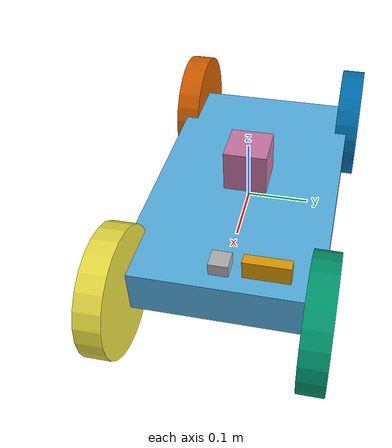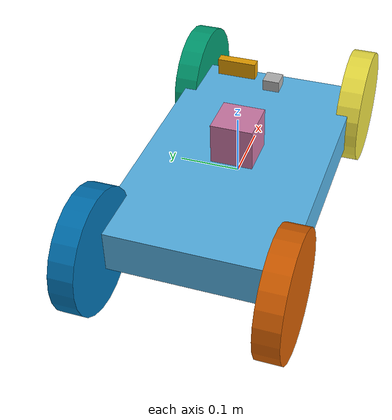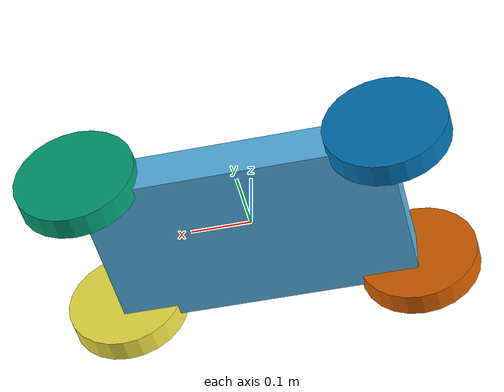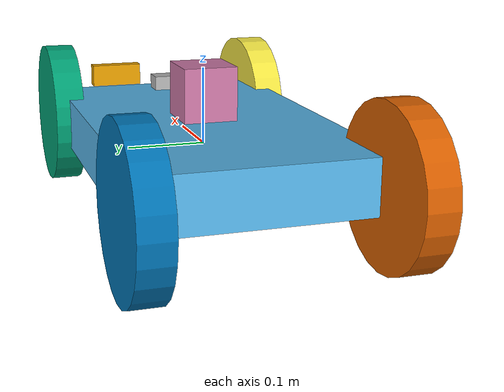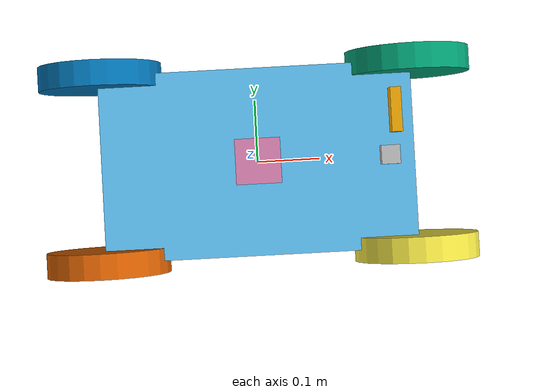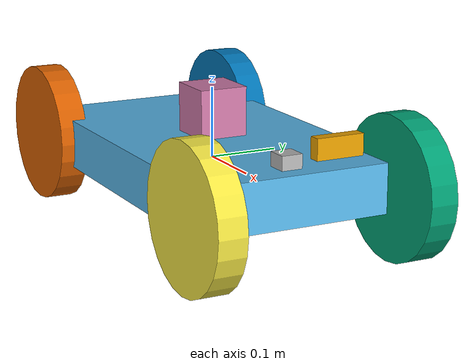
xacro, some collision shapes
<robot name="simple4wheeler" xmlns:xacro = "http://www.ros.org/wiki/xacro">
    <xacro:property name="pii" value="3.142" />

    <link name="map">
    </link>

    <link name ="link_chasis">
        <!--Pose x, y, z, roll, pitch, yaw-->
        <pose> 0 0 0.1 0 0 0 </pose>
        <inertial>
            <mass value="50"/>
            <origin rpy="0 0 0" xyz=" 0 0 0.1" />
            <inertia ixx="0.03954"
                     ixy="0"
                     ixz="0"
                     iyy="0.10620"
                     iyz="0"
                     izz="0.10620" />
        </inertial>

        <collision name="collision_chasis">
            <geometry>
                <box size="0.5 0.3 0.07"/>
            </geometry>
        </collision>
        <visual>
            <geometry>
                <box size="0.5 0.3 0.07"/>
            </geometry>
        </visual>
    </link>

    <joint name="joint_map" type="fixed">
        <parent link="map"/>
        <child link="link_chasis"/>
    </joint>
<link name = "link_right_back_wheel">
        <inertial>
            <mass value = "5"/>
            <origin rpy = "0 0 0" xyz = "0 0 0.1"/>
            <inertia ixx = "0.03954"
                 ixy = "0"
                 ixz = "0"
                 iyy = "0.10620"
                 iyz = "0"
                 izz = "0.10620"/>
        </inertial>
        <collision name = "collision_right_back_wheel">
            <geometry>
                <cylinder length = "0.04" radius = "0.1"/>
            </geometry>
        </collision>

        <visual name = "visual_right_back_wheel">
            <geometry>
                <cylinder length = "0.04" radius = "0.1"/>
            </geometry>
        </visual>
</link>
    <joint name = "joint_right_back_wheel" type = "continuous">
        <origin rpy = "1.57 1.57 0" xyz = "0.25 0.15 0"/>
        <parent link = "link_chasis"/>
        <child link = "link_right_back_wheel"/>
        <axis rpy = "0 0 0" xyz = "0 0 1"/>
        <limit effort = "10" velocity = "10"/>
        <joint_properties damping = "1.0" friction = "1.0"/>
    </joint>
    <link name = "link_left_back_wheel">
        <inertial>
            <mass value = "5"/>
            <origin rpy = "0 0 0" xyz = "0 0 0.1"/>
            <inertia ixx = "0.03954"
                 ixy = "0"
                 ixz = "0"
                 iyy = "0.10620"
                 iyz = "0"
                 izz = "0.10620"/>
        </inertial>
        <collision name = "collision_left_back_wheel">
            <geometry>
                <cylinder length = "0.04" radius = "0.1"/>
            </geometry>
        </collision>

        <visual name = "visual_left_back_wheel">
            <geometry>
                <cylinder length = "0.04" radius = "0.1"/>
            </geometry>
        </visual>
    </link>
    <joint name = "joint_left_back_wheel" type = "continuous">
        <origin rpy = "1.57 1.57 0" xyz = "0.25 -0.15 0"/>
        <parent link = "link_chasis"/>
        <child link = "link_left_back_wheel"/>
        <axis rpy = "0 0 0" xyz = "0 0 1"/>
        <limit effort = "10" velocity = "10"/>
        <joint_properties damping = "1.0" friction = "1.0"/>
    </joint>

    <link name = "link_right_front_wheel">
        <inertial>
            <mass value = "5"/>
            <origin rpy = "0 0 0" xyz = "0 0 0.1"/>
            <inertia ixx = "0.03954"
                 ixy = "0"
                 ixz = "0"
                 iyy = "0.10620"
                 iyz = "0"
                 izz = "0.10620"/>
        </inertial>
        <collision name = "collision_right_front_wheel">
            <geometry>
                <cylinder length = "0.04" radius = "0.1"/>
            </geometry>
        </collision>

        <visual name = "visual_right_front_wheel">
            <geometry>
                <cylinder length = "0.04" radius = "0.1"/>
            </geometry>
        </visual>
    </link>
    <joint name = "joint_right_front_wheel" type = "continuous">
        <origin rpy = "1.57 1.57 0" xyz = "-0.25 0.15 0"/>
        <parent link = "link_chasis"/>
        <child link = "link_right_front_wheel"/>
        <axis rpy = "0 0 0" xyz = "0 0 1"/>
        <limit effort = "10" velocity = "10"/>
        <joint_properties damping = "1.0" friction = "1.0"/>
    </joint>
    <link name = "link_left_front_wheel">
        <inertial>
            <mass value = "5"/>
            <origin rpy = "0 0 0" xyz = "0 0 0.1"/>
            <inertia ixx = "0.03954"
                 ixy = "0"
                 ixz = "0"
                 iyy = "0.10620"
                 iyz = "0"
                 izz = "0.10620"/>
        </inertial>
        <collision name = "collision_left_front_wheel">
            <geometry>
                <cylinder length = "0.04" radius = "0.1"/>
            </geometry>
        </collision>

        <visual name = "visual_left_front_wheel">
            <geometry>
                <cylinder length = "0.04" radius = "0.1"/>
            </geometry>
        </visual>
    </link>
    <joint name = "joint_left_front_wheel" type = "continuous">
        <origin rpy = "1.57 1.57 0" xyz = "-0.25 -0.15 0"/>
        <parent link = "link_chasis"/>
        <child link = "link_left_front_wheel"/>
        <axis rpy = "0 0 0" xyz = "0 0 1"/>
        <limit effort = "10" velocity = "10"/>
        <joint_properties damping = "1.0" friction = "1.0"/>
    </joint>

    <link name="link_lidar">
        <inertial>
            <mass value="0.05"/>
            <inertia
                ixx = "0.00001"
                ixy = "0"
                ixz = "0"
                iyy = "0.00001"
                iyz = "0"
                izz = "0.00001" />
        </inertial>

        <visual>
            <geometry>
                <mesh filename="file://package://simple4wheeler/mesh/rplidar_a2_simple.stl" />
            </geometry>
        </visual>
        <collision>
            <geometry>
                <box size="0.07 0.07 0.07"/>
            </geometry>
        </collision>
    </link>
    <joint name="joint_lidar" type="fixed">
        <origin rpy="0 0 0" xyz="0 0 0.07"/>
        <parent link="link_chasis" />
        <child link="link_lidar" />
    </joint>

    <gazebo reference="link_lidar">
        <sensor type="ray" name="sensor_lidar">
            <update_rate> 10 </update_rate>
            <visualize> true </visualize>
            <ray>
                <scan>
                    <horizontal>
                        <samples> 400 </samples>
                        <min_angle> -3.142 </min_angle>
                        <max_angle> 3.142 </max_angle>
                    </horizontal>
                    <vertical>
                        <samples> 1 </samples>
                        <min_angle> -0.05 </min_angle>
                        <max_angle> 0.05 </max_angle>
                    </vertical>
                </scan>
                <range>
                    <min> 0.15 </min>
                    <max> 12 </max>
                    <resolution> 0.01 </resolution>
                </range>
            </ray>
            <plugin name="gazebo_ros_lidar" filename="libgazebo_ros_laser.so">
                <gaussianNoise> 0.01 </gaussianNoise>
                <updateRate> 10 </updateRate>
                <topicName> lidar </topicName>
                <minRange> 0.15 </minRange>
                <maxRange> 12 </maxRange>
                <frameName> link_lidar </frameName>
            </plugin>
        </sensor>
</gazebo>

<link name="link_camera">
        <inertial>
            <mass value="0.01"/>
            <inertia ixx="0.00001" ixy="0" ixz="0" iyy="0.00001" iyz="0" izz="0.00001"/>
        </inertial>
        <visual>
           <geometry>
                <box size="0.03 0.03 0.02"/>
            </geometry>
        </visual>
        <collision>
            <geometry>
                <box size="0.032 0.032 0.04"/>
            </geometry>
        </collision>
    </link>
    <joint name="joint_camera" type="fixed">
        <origin rpy="0 0 0" xyz="0.21 0 0.045" />
        <parent link="link_chasis"/>
        <child link="link_camera"/>
    </joint>
<link name="link_ultrasonic">
        <inertial>
            <mass value="0.01"/>
            <inertia ixx="0.00001" ixy="0" ixz="0" iyy="0.00001" iyz="0" izz="0.00001"/>
        </inertial>
        <visual>
             <geometry>
                <box size="0.017 0.07 0.03"/>
            </geometry>
        </visual>
        <collision>
            <geometry>
                <box size="0.02 0.08 0.05"/>
            </geometry>
        </collision>
    </link>
    <joint name="joint_ultrasonic" type="fixed">
        <origin rpy="0 0 0" xyz="0.22 0.07 0.058" />
        <parent link="link_chasis"/>
        <child link="link_ultrasonic"/>
    </joint>
    <gazebo reference="link_ultrasonic">
        <sensor name="ultrasonic" type="ray">
            <update_rate>10</update_rate>
            <visualize>true</visualize>
            <ray>
                <scan>
                    <horizontal>
                        <samples>400</samples>
                        <min_angle>-0.25</min_angle>
                        <max_angle>0.2</max_angle>
                    </horizontal>
                    <vertical>
                        <samples>1</samples>
                        <min_angle>-0.05</min_angle>
                        <max_angle>0.05</max_angle>
                    </vertical>
                </scan>
                <range>
                    <min>0.15</min>
                    <max>12</max>
                    <resolution>0.01</resolution>
                </range>
            </ray>
            <plugin name="gazebo_ros_ultrasonic" filename="libgazebo_ros_range.so">
                <gaussianNoise>0.01</gaussianNoise>
                <updateRate>10</updateRate>
                <topicName>ultrasonic</topicName>
                <minRange>0.15</minRange>
                <maxRange>12</maxRange>
                <frameName>link_ultrasonic</frameName>
            </plugin>
        </sensor>
    </gazebo>
    <gazebo reference="link_camera">
  <sensor type="camera" name="camera_sensor">
    <update_rate>30.0</update_rate>
    <camera name="head_camera">
      <horizontal_fov>1.3962634</horizontal_fov>
      <image>
        <width>800</width>
        <height>800</height>
        <format>R8G8B8</format>
      </image>
      <clip>
        <near>0.02</near>
        <far>300</far>
      </clip>
    </camera>
    <plugin name="camera_controller" filename="libgazebo_ros_camera.so">
      <gaussianNoise>0.01</gaussianNoise>
    <updateRate>10</updateRate>
    <topicName>camera_image</topicName>
    <minRange>0.15</minRange>
    <maxRange>12</maxRange>
    <frameName>link_camera</frameName>

    </plugin>
  </sensor>
</gazebo>
<gazebo>
  <plugin name="skid_steer_drive_controller" filename="libgazebo_ros_skid_steer_drive.so">
                <updateRate>100.0</updateRate>
                <robotNamespace>/</robotNamespace>
                <leftFrontJoint>joint_left_front_wheel</leftFrontJoint>
                <rightFrontJoint>joint_right_front_wheel</rightFrontJoint>
                <leftRearJoint>joint_left_back_wheel</leftRearJoint>
                <rightRearJoint>joint_right_back_wheel</rightRearJoint>
                <wheelSeparation>0.4</wheelSeparation>
                <wheelDiameter>0.2</wheelDiameter>
                <robotBaseFrame>base_link</robotBaseFrame>
                <torque>50</torque>
                <topicName>cmd_vel</topicName>
                <broadcastTF>false</broadcastTF>
            </plugin>
</gazebo>
</robot>
